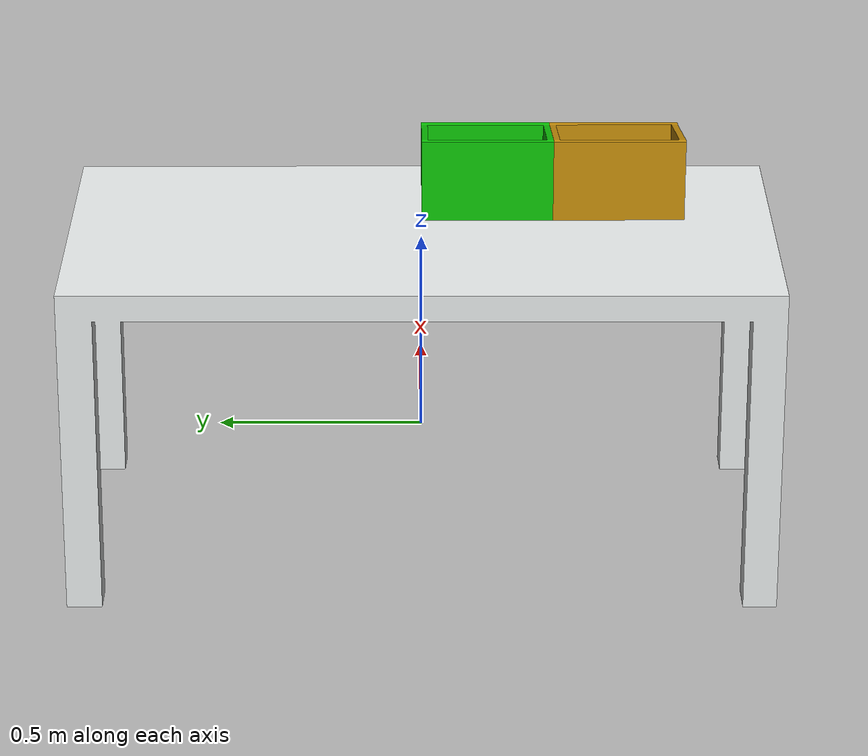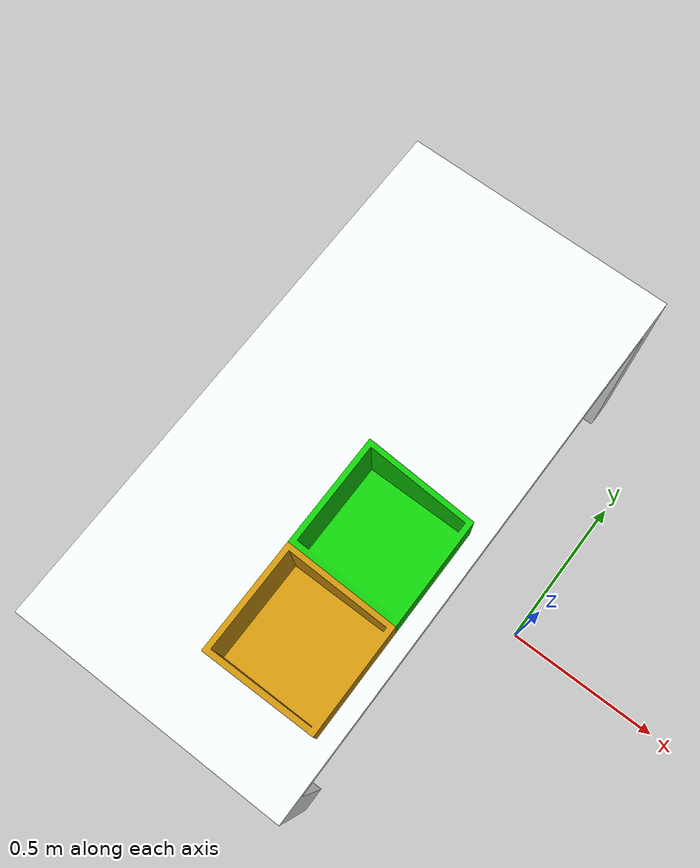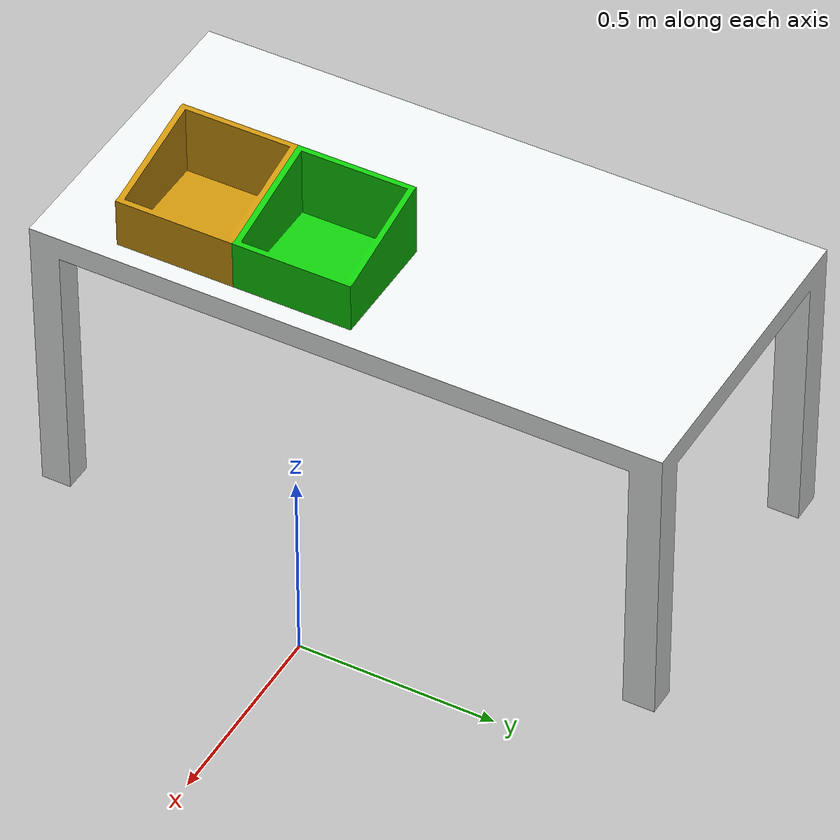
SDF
<sdf version="1.6">
 <world name="default">
  <model name="ground_plane">
   <static>1</static>
   <link name="link">
    <collision name="collision">
     <geometry><plane><normal>0 0 1</normal><size>100 100</size></plane></geometry>
     <surface>
      <contact><collide_bitmask>65535</collide_bitmask></contact>
      <friction><ode><mu>100</mu><mu2>50</mu2></ode></friction>
     </surface>
    </collision>
    <visual name="visual">
     <cast_shadows>0</cast_shadows>
     <geometry><plane><normal>0 0 1</normal><size>100 100</size></plane></geometry>
     <material>
      <script><uri>file://media/materials/scripts/gazebo.material</uri><name>Gazebo/Grey</name></script>
     </material>
    </visual>
   </link>
  </model>
  <model name="ground_logo_big">
   <static>1</static>
   <link name="link">
    <visual name="visual">
     <pose>0 0 0.001 0 -0 0</pose>
     <geometry>
      <mesh><scale>1 1 1</scale><uri>model://ground_logo_big/meshes/ground_logo.dae</uri></mesh>
     </geometry>
    </visual>
   </link>
   <pose>-0.5 0 0 0 -0 1.57</pose>
  </model>
  <model name="target_table">
   <link name="link">
    <inertial>
     <mass>1</mass>
     <inertia><ixx>1</ixx><ixy>0</ixy><ixz>0</ixz><iyy>1</iyy><iyz>0</iyz><izz>1</izz></inertia>
    </inertial>
    <visual name="visual">
     <pose>0 0 0.73 0 -0 1.57</pose>
     <geometry><mesh><scale>1 1 1</scale><uri>model://target_table/meshes/target_table.dae</uri></mesh></geometry>
    </visual>
    <collision name="collision_0">
     <pose>0 0 0.73 0 -0 0</pose>
     <geometry><box><size>0.8 1.6 0.06</size></box></geometry>
     <surface>
      <friction>
       <ode><mu>1</mu><mu2>1</mu2><fdir1>0 0 0</fdir1><slip1>0</slip1><slip2>0</slip2></ode>
       <torsional>
        <coefficient>1</coefficient>
        <patch_radius>0</patch_radius>
        <surface_radius>0</surface_radius>
        <use_patch_radius>1</use_patch_radius>
        <ode><slip>0</slip></ode>
       </torsional>
      </friction>
      <bounce><restitution_coefficient>0</restitution_coefficient><threshold>1e+06</threshold></bounce>
      <contact>
       <collide_without_contact>0</collide_without_contact>
       <collide_without_contact_bitmask>1</collide_without_contact_bitmask>
       <collide_bitmask>1</collide_bitmask>
       <ode>
        <soft_cfm>0</soft_cfm>
        <soft_erp>0.2</soft_erp>
        <kp>1e+13</kp>
        <kd>1</kd>
        <max_vel>0.01</max_vel>
        <min_depth>0</min_depth>
       </ode>
       <bullet>
        <split_impulse>1</split_impulse>
        <split_impulse_penetration_threshold>-0.01</split_impulse_penetration_threshold>
        <soft_cfm>0</soft_cfm>
        <soft_erp>0.2</soft_erp>
        <kp>1e+13</kp>
        <kd>1</kd>
       </bullet>
      </contact>
     </surface>
    </collision>
   </link>
   <static>1</static>
   <pose>-0.6 0 0 0 -0 1.57</pose>
  </model>
  <model name="yellow_target">
   <static>1</static>
   <link name="link">
    <inertial>
     <mass>1</mass>
     <inertia><ixx>1</ixx><ixy>0</ixy><ixz>0</ixz><iyy>1</iyy><iyz>0</iyz><izz>1</izz></inertia>
    </inertial>
    <visual name="visual">
     <pose>0 0 0.01 0 -0 0</pose>
     <geometry>
      <mesh><scale>0.5 0.5 0.5</scale><uri>model://yellow_target/meshes/yellow_target.dae</uri></mesh>
     </geometry>
    </visual>
    <collision name="front_wall">
     <pose>0.144 0 0 0 -0 0</pose>
     <geometry><box><size>0.012 0.3 0.24</size></box></geometry>
     <surface>
      <friction>
       <ode><mu>1</mu><mu2>1</mu2><fdir1>0 0 0</fdir1><slip1>0</slip1><slip2>0</slip2></ode>
       <torsional>
        <coefficient>1</coefficient>
        <patch_radius>0</patch_radius>
        <surface_radius>0</surface_radius>
        <use_patch_radius>1</use_patch_radius>
        <ode><slip>0</slip></ode>
       </torsional>
      </friction>
      <bounce><restitution_coefficient>0</restitution_coefficient><threshold>1e+06</threshold></bounce>
      <contact>
       <collide_without_contact>0</collide_without_contact>
       <collide_without_contact_bitmask>1</collide_without_contact_bitmask>
       <collide_bitmask>1</collide_bitmask>
       <ode>
        <soft_cfm>0</soft_cfm>
        <soft_erp>0.2</soft_erp>
        <kp>1e+13</kp>
        <kd>1</kd>
        <max_vel>0.01</max_vel>
        <min_depth>0</min_depth>
       </ode>
       <bullet>
        <split_impulse>1</split_impulse>
        <split_impulse_penetration_threshold>-0.01</split_impulse_penetration_threshold>
        <soft_cfm>0</soft_cfm>
        <soft_erp>0.2</soft_erp>
        <kp>1e+13</kp>
        <kd>1</kd>
       </bullet>
      </contact>
     </surface>
    </collision>
    <collision name="right_wall">
     <pose>0 -0.144 0 0 -0 0</pose>
     <geometry><box><size>0.3 0.012 0.36</size></box></geometry>
     <surface>
      <friction>
       <ode><mu>1</mu><mu2>1</mu2><fdir1>0 0 0</fdir1><slip1>0</slip1><slip2>0</slip2></ode>
       <torsional>
        <coefficient>1</coefficient>
        <patch_radius>0</patch_radius>
        <surface_radius>0</surface_radius>
        <use_patch_radius>1</use_patch_radius>
        <ode><slip>0</slip></ode>
       </torsional>
      </friction>
      <bounce><restitution_coefficient>0</restitution_coefficient><threshold>1e+06</threshold></bounce>
      <contact>
       <collide_without_contact>0</collide_without_contact>
       <collide_without_contact_bitmask>1</collide_without_contact_bitmask>
       <collide_bitmask>1</collide_bitmask>
       <ode>
        <soft_cfm>0</soft_cfm>
        <soft_erp>0.2</soft_erp>
        <kp>1e+13</kp>
        <kd>1</kd>
        <max_vel>0.01</max_vel>
        <min_depth>0</min_depth>
       </ode>
       <bullet>
        <split_impulse>1</split_impulse>
        <split_impulse_penetration_threshold>-0.01</split_impulse_penetration_threshold>
        <soft_cfm>0</soft_cfm>
        <soft_erp>0.2</soft_erp>
        <kp>1e+13</kp>
        <kd>1</kd>
       </bullet>
      </contact>
     </surface>
    </collision>
    <collision name="bottom">
     <geometry><box><size>0.3 0.3 0.025</size></box></geometry>
     <surface>
      <friction>
       <ode><mu>1</mu><mu2>1</mu2><fdir1>0 0 0</fdir1><slip1>0</slip1><slip2>0</slip2></ode>
       <torsional>
        <coefficient>1</coefficient>
        <patch_radius>0</patch_radius>
        <surface_radius>0</surface_radius>
        <use_patch_radius>1</use_patch_radius>
        <ode><slip>0</slip></ode>
       </torsional>
      </friction>
      <bounce><restitution_coefficient>0</restitution_coefficient><threshold>1e+06</threshold></bounce>
      <contact>
       <collide_without_contact>0</collide_without_contact>
       <collide_without_contact_bitmask>1</collide_without_contact_bitmask>
       <collide_bitmask>1</collide_bitmask>
       <ode>
        <soft_cfm>0</soft_cfm>
        <soft_erp>0.2</soft_erp>
        <kp>1e+13</kp>
        <kd>1</kd>
        <max_vel>0.01</max_vel>
        <min_depth>0</min_depth>
       </ode>
       <bullet>
        <split_impulse>1</split_impulse>
        <split_impulse_penetration_threshold>-0.01</split_impulse_penetration_threshold>
        <soft_cfm>0</soft_cfm>
        <soft_erp>0.2</soft_erp>
        <kp>1e+13</kp>
        <kd>1</kd>
       </bullet>
      </contact>
     </surface>
    </collision>
    <collision name="left_wall">
     <pose>0 0.144 0 0 -0 0</pose>
     <geometry><box><size>0.3 0.012 0.39</size></box></geometry>
     <surface>
      <friction>
       <ode><mu>1</mu><mu2>1</mu2><fdir1>0 0 0</fdir1><slip1>0</slip1><slip2>0</slip2></ode>
       <torsional>
        <coefficient>1</coefficient>
        <patch_radius>0</patch_radius>
        <surface_radius>0</surface_radius>
        <use_patch_radius>1</use_patch_radius>
        <ode><slip>0</slip></ode>
       </torsional>
      </friction>
      <bounce><restitution_coefficient>0</restitution_coefficient><threshold>1e+06</threshold></bounce>
      <contact>
       <collide_without_contact>0</collide_without_contact>
       <collide_without_contact_bitmask>1</collide_without_contact_bitmask>
       <collide_bitmask>1</collide_bitmask>
       <ode>
        <soft_cfm>0</soft_cfm>
        <soft_erp>0.2</soft_erp>
        <kp>1e+13</kp>
        <kd>1</kd>
        <max_vel>0.01</max_vel>
        <min_depth>0</min_depth>
       </ode>
       <bullet>
        <split_impulse>1</split_impulse>
        <split_impulse_penetration_threshold>-0.01</split_impulse_penetration_threshold>
        <soft_cfm>0</soft_cfm>
        <soft_erp>0.2</soft_erp>
        <kp>1e+13</kp>
        <kd>1</kd>
       </bullet>
      </contact>
     </surface>
    </collision>
    <collision name="back_wall">
     <pose>-0.144 0 0 0 -0 0</pose>
     <geometry><box><size>0.012 0.3 0.39</size></box></geometry>
     <surface>
      <friction>
       <ode><mu>1</mu><mu2>1</mu2><fdir1>0 0 0</fdir1><slip1>0</slip1><slip2>0</slip2></ode>
       <torsional>
        <coefficient>1</coefficient>
        <patch_radius>0</patch_radius>
        <surface_radius>0</surface_radius>
        <use_patch_radius>1</use_patch_radius>
        <ode><slip>0</slip></ode>
       </torsional>
      </friction>
      <bounce><restitution_coefficient>0</restitution_coefficient><threshold>1e+06</threshold></bounce>
      <contact>
       <collide_without_contact>0</collide_without_contact>
       <collide_without_contact_bitmask>1</collide_without_contact_bitmask>
       <collide_bitmask>1</collide_bitmask>
       <ode>
        <soft_cfm>0</soft_cfm>
        <soft_erp>0.2</soft_erp>
        <kp>1e+13</kp>
        <kd>1</kd>
        <max_vel>0.01</max_vel>
        <min_depth>0</min_depth>
       </ode>
       <bullet>
        <split_impulse>1</split_impulse>
        <split_impulse_penetration_threshold>-0.01</split_impulse_penetration_threshold>
        <soft_cfm>0</soft_cfm>
        <soft_erp>0.2</soft_erp>
        <kp>1e+13</kp>
        <kd>1</kd>
       </bullet>
      </contact>
     </surface>
    </collision>
   </link>
   <pose>-0.4 -0.45 0.755 0 -0 0</pose>
  </model>
  <model name="green_target">
   <static>1</static>
   <link name="link">
    <inertial>
     <mass>1</mass>
     <inertia><ixx>1</ixx><ixy>0</ixy><ixz>0</ixz><iyy>1</iyy><iyz>0</iyz><izz>1</izz></inertia>
    </inertial>
    <visual name="visual">
     <pose>0 0 0.01 0 -0 0</pose>
     <geometry>
      <mesh><scale>0.5 0.5 0.5</scale><uri>model://green_target/meshes/green_target.dae</uri></mesh>
     </geometry>
    </visual>
    <collision name="front_wall">
     <pose>0.144 0 0 0 -0 0</pose>
     <geometry><box><size>0.012 0.3 0.24</size></box></geometry>
     <surface>
      <friction>
       <ode><mu>1</mu><mu2>1</mu2><fdir1>0 0 0</fdir1><slip1>0</slip1><slip2>0</slip2></ode>
       <torsional>
        <coefficient>1</coefficient>
        <patch_radius>0</patch_radius>
        <surface_radius>0</surface_radius>
        <use_patch_radius>1</use_patch_radius>
        <ode><slip>0</slip></ode>
       </torsional>
      </friction>
      <bounce><restitution_coefficient>0</restitution_coefficient><threshold>1e+06</threshold></bounce>
      <contact>
       <collide_without_contact>0</collide_without_contact>
       <collide_without_contact_bitmask>1</collide_without_contact_bitmask>
       <collide_bitmask>1</collide_bitmask>
       <ode>
        <soft_cfm>0</soft_cfm>
        <soft_erp>0.2</soft_erp>
        <kp>1e+13</kp>
        <kd>1</kd>
        <max_vel>0.01</max_vel>
        <min_depth>0</min_depth>
       </ode>
       <bullet>
        <split_impulse>1</split_impulse>
        <split_impulse_penetration_threshold>-0.01</split_impulse_penetration_threshold>
        <soft_cfm>0</soft_cfm>
        <soft_erp>0.2</soft_erp>
        <kp>1e+13</kp>
        <kd>1</kd>
       </bullet>
      </contact>
     </surface>
    </collision>
    <collision name="right_wall">
     <pose>0 -0.144 0 0 -0 0</pose>
     <geometry><box><size>0.3 0.012 0.36</size></box></geometry>
     <surface>
      <friction>
       <ode><mu>1</mu><mu2>1</mu2><fdir1>0 0 0</fdir1><slip1>0</slip1><slip2>0</slip2></ode>
       <torsional>
        <coefficient>1</coefficient>
        <patch_radius>0</patch_radius>
        <surface_radius>0</surface_radius>
        <use_patch_radius>1</use_patch_radius>
        <ode><slip>0</slip></ode>
       </torsional>
      </friction>
      <bounce><restitution_coefficient>0</restitution_coefficient><threshold>1e+06</threshold></bounce>
      <contact>
       <collide_without_contact>0</collide_without_contact>
       <collide_without_contact_bitmask>1</collide_without_contact_bitmask>
       <collide_bitmask>1</collide_bitmask>
       <ode>
        <soft_cfm>0</soft_cfm>
        <soft_erp>0.2</soft_erp>
        <kp>1e+13</kp>
        <kd>1</kd>
        <max_vel>0.01</max_vel>
        <min_depth>0</min_depth>
       </ode>
       <bullet>
        <split_impulse>1</split_impulse>
        <split_impulse_penetration_threshold>-0.01</split_impulse_penetration_threshold>
        <soft_cfm>0</soft_cfm>
        <soft_erp>0.2</soft_erp>
        <kp>1e+13</kp>
        <kd>1</kd>
       </bullet>
      </contact>
     </surface>
    </collision>
    <collision name="bottom">
     <geometry><box><size>0.3 0.3 0.025</size></box></geometry>
     <surface>
      <friction>
       <ode><mu>1</mu><mu2>1</mu2><fdir1>0 0 0</fdir1><slip1>0</slip1><slip2>0</slip2></ode>
       <torsional>
        <coefficient>1</coefficient>
        <patch_radius>0</patch_radius>
        <surface_radius>0</surface_radius>
        <use_patch_radius>1</use_patch_radius>
        <ode><slip>0</slip></ode>
       </torsional>
      </friction>
      <bounce><restitution_coefficient>0</restitution_coefficient><threshold>1e+06</threshold></bounce>
      <contact>
       <collide_without_contact>0</collide_without_contact>
       <collide_without_contact_bitmask>1</collide_without_contact_bitmask>
       <collide_bitmask>1</collide_bitmask>
       <ode>
        <soft_cfm>0</soft_cfm>
        <soft_erp>0.2</soft_erp>
        <kp>1e+13</kp>
        <kd>1</kd>
        <max_vel>0.01</max_vel>
        <min_depth>0</min_depth>
       </ode>
       <bullet>
        <split_impulse>1</split_impulse>
        <split_impulse_penetration_threshold>-0.01</split_impulse_penetration_threshold>
        <soft_cfm>0</soft_cfm>
        <soft_erp>0.2</soft_erp>
        <kp>1e+13</kp>
        <kd>1</kd>
       </bullet>
      </contact>
     </surface>
    </collision>
    <collision name="left_wall">
     <pose>0 0.144 0 0 -0 0</pose>
     <geometry><box><size>0.3 0.012 0.39</size></box></geometry>
     <surface>
      <friction>
       <ode><mu>1</mu><mu2>1</mu2><fdir1>0 0 0</fdir1><slip1>0</slip1><slip2>0</slip2></ode>
       <torsional>
        <coefficient>1</coefficient>
        <patch_radius>0</patch_radius>
        <surface_radius>0</surface_radius>
        <use_patch_radius>1</use_patch_radius>
        <ode><slip>0</slip></ode>
       </torsional>
      </friction>
      <bounce><restitution_coefficient>0</restitution_coefficient><threshold>1e+06</threshold></bounce>
      <contact>
       <collide_without_contact>0</collide_without_contact>
       <collide_without_contact_bitmask>1</collide_without_contact_bitmask>
       <collide_bitmask>1</collide_bitmask>
       <ode>
        <soft_cfm>0</soft_cfm>
        <soft_erp>0.2</soft_erp>
        <kp>1e+13</kp>
        <kd>1</kd>
        <max_vel>0.01</max_vel>
        <min_depth>0</min_depth>
       </ode>
       <bullet>
        <split_impulse>1</split_impulse>
        <split_impulse_penetration_threshold>-0.01</split_impulse_penetration_threshold>
        <soft_cfm>0</soft_cfm>
        <soft_erp>0.2</soft_erp>
        <kp>1e+13</kp>
        <kd>1</kd>
       </bullet>
      </contact>
     </surface>
    </collision>
    <collision name="back_wall">
     <pose>-0.144 0 0 0 -0 0</pose>
     <geometry><box><size>0.012 0.3 0.39</size></box></geometry>
     <surface>
      <friction>
       <ode><mu>1</mu><mu2>1</mu2><fdir1>0 0 0</fdir1><slip1>0</slip1><slip2>0</slip2></ode>
       <torsional>
        <coefficient>1</coefficient>
        <patch_radius>0</patch_radius>
        <surface_radius>0</surface_radius>
        <use_patch_radius>1</use_patch_radius>
        <ode><slip>0</slip></ode>
       </torsional>
      </friction>
      <bounce><restitution_coefficient>0</restitution_coefficient><threshold>1e+06</threshold></bounce>
      <contact>
       <collide_without_contact>0</collide_without_contact>
       <collide_without_contact_bitmask>1</collide_without_contact_bitmask>
       <collide_bitmask>1</collide_bitmask>
       <ode>
        <soft_cfm>0</soft_cfm>
        <soft_erp>0.2</soft_erp>
        <kp>1e+13</kp>
        <kd>1</kd>
        <max_vel>0.01</max_vel>
        <min_depth>0</min_depth>
       </ode>
       <bullet>
        <split_impulse>1</split_impulse>
        <split_impulse_penetration_threshold>-0.01</split_impulse_penetration_threshold>
        <soft_cfm>0</soft_cfm>
        <soft_erp>0.2</soft_erp>
        <kp>1e+13</kp>
        <kd>1</kd>
       </bullet>
      </contact>
     </surface>
    </collision>
   </link>
   <pose>-0.4 -0.15 0.755 0 -0 0</pose>
  </model>
 </world>
</sdf>
